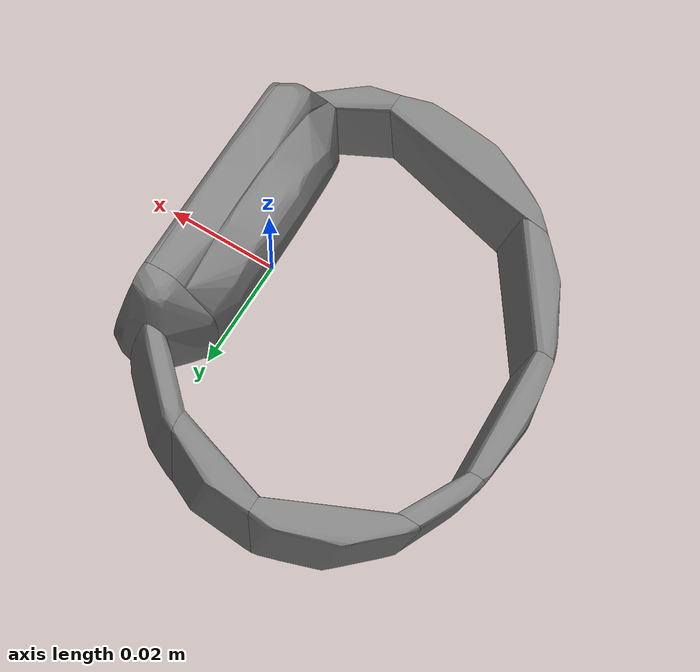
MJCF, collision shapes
<mujoco model="wristwatch">
  <compiler meshdir="."/>

  <asset>
    <mesh name="wristwatch" file="wristwatch.stl"/>
    <mesh name="wristwatch_collision_hull_000" file="wristwatch_collision_hull_000.stl"/>
    <mesh name="wristwatch_collision_hull_001" file="wristwatch_collision_hull_001.stl"/>
    <mesh name="wristwatch_collision_hull_002" file="wristwatch_collision_hull_002.stl"/>
    <mesh name="wristwatch_collision_hull_003" file="wristwatch_collision_hull_003.stl"/>
    <mesh name="wristwatch_collision_hull_004" file="wristwatch_collision_hull_004.stl"/>
    <mesh name="wristwatch_collision_hull_005" file="wristwatch_collision_hull_005.stl"/>
    <mesh name="wristwatch_collision_hull_006" file="wristwatch_collision_hull_006.stl"/>
    <mesh name="wristwatch_collision_hull_007" file="wristwatch_collision_hull_007.stl"/>
    <mesh name="wristwatch_collision_hull_008" file="wristwatch_collision_hull_008.stl"/>
    <mesh name="wristwatch_collision_hull_009" file="wristwatch_collision_hull_009.stl"/>
    <mesh name="wristwatch_collision_hull_010" file="wristwatch_collision_hull_010.stl"/>
    <mesh name="wristwatch_collision_hull_011" file="wristwatch_collision_hull_011.stl"/>
    <mesh name="wristwatch_collision_hull_012" file="wristwatch_collision_hull_012.stl"/>
  </asset>

  <worldbody>
    <body name="object">
      <freejoint name="object_joint"/>
      <geom name="object_visual" type="mesh" mesh="wristwatch"
            contype="0" conaffinity="0" group="2" rgba="0.9 0.9 0.8 1" mass="0"/>
      <geom name="wristwatch_collision_hull_000_collision" type="mesh" mesh="wristwatch_collision_hull_000"
            mass="0.0038" condim="6" friction="1.0 0.002 0.002" priority="1"/>
      <geom name="wristwatch_collision_hull_001_collision" type="mesh" mesh="wristwatch_collision_hull_001"
            mass="0.0038" condim="6" friction="1.0 0.002 0.002" priority="1"/>
      <geom name="wristwatch_collision_hull_002_collision" type="mesh" mesh="wristwatch_collision_hull_002"
            mass="0.0038" condim="6" friction="1.0 0.002 0.002" priority="1"/>
      <geom name="wristwatch_collision_hull_003_collision" type="mesh" mesh="wristwatch_collision_hull_003"
            mass="0.0038" condim="6" friction="1.0 0.002 0.002" priority="1"/>
      <geom name="wristwatch_collision_hull_004_collision" type="mesh" mesh="wristwatch_collision_hull_004"
            mass="0.0038" condim="6" friction="1.0 0.002 0.002" priority="1"/>
      <geom name="wristwatch_collision_hull_005_collision" type="mesh" mesh="wristwatch_collision_hull_005"
            mass="0.0038" condim="6" friction="1.0 0.002 0.002" priority="1"/>
      <geom name="wristwatch_collision_hull_006_collision" type="mesh" mesh="wristwatch_collision_hull_006"
            mass="0.0038" condim="6" friction="1.0 0.002 0.002" priority="1"/>
      <geom name="wristwatch_collision_hull_007_collision" type="mesh" mesh="wristwatch_collision_hull_007"
            mass="0.0038" condim="6" friction="1.0 0.002 0.002" priority="1"/>
      <geom name="wristwatch_collision_hull_008_collision" type="mesh" mesh="wristwatch_collision_hull_008"
            mass="0.0038" condim="6" friction="1.0 0.002 0.002" priority="1"/>
      <geom name="wristwatch_collision_hull_009_collision" type="mesh" mesh="wristwatch_collision_hull_009"
            mass="0.0038" condim="6" friction="1.0 0.002 0.002" priority="1"/>
      <geom name="wristwatch_collision_hull_010_collision" type="mesh" mesh="wristwatch_collision_hull_010"
            mass="0.0038" condim="6" friction="1.0 0.002 0.002" priority="1"/>
      <geom name="wristwatch_collision_hull_011_collision" type="mesh" mesh="wristwatch_collision_hull_011"
            mass="0.0038" condim="6" friction="1.0 0.002 0.002" priority="1"/>
      <geom name="wristwatch_collision_hull_012_collision" type="mesh" mesh="wristwatch_collision_hull_012"
            mass="0.0038" condim="6" friction="1.0 0.002 0.002" priority="1"/>
    </body>
  </worldbody>
</mujoco>
